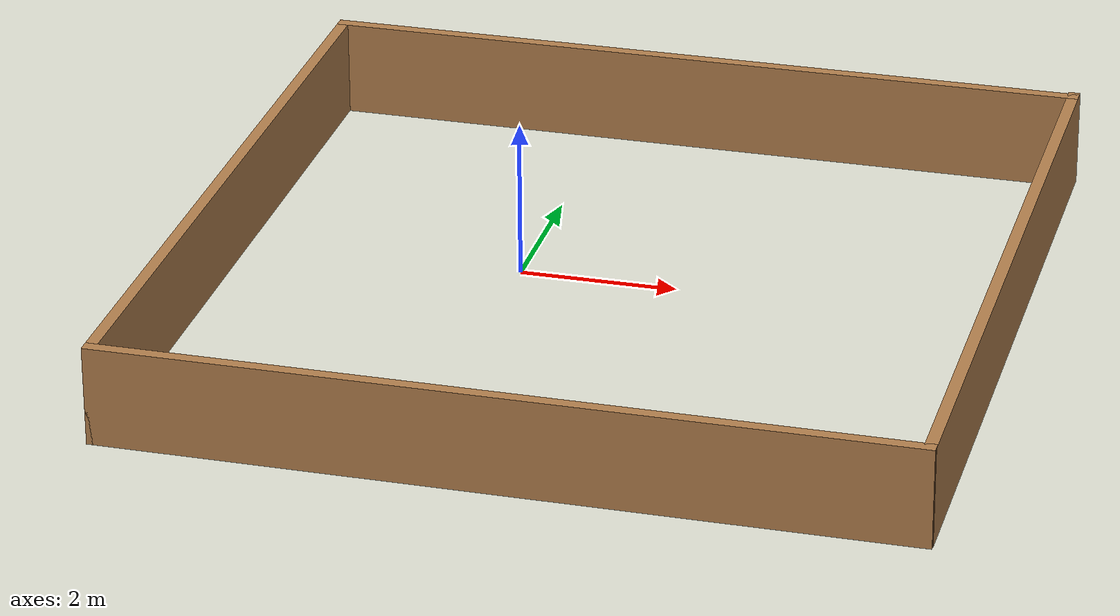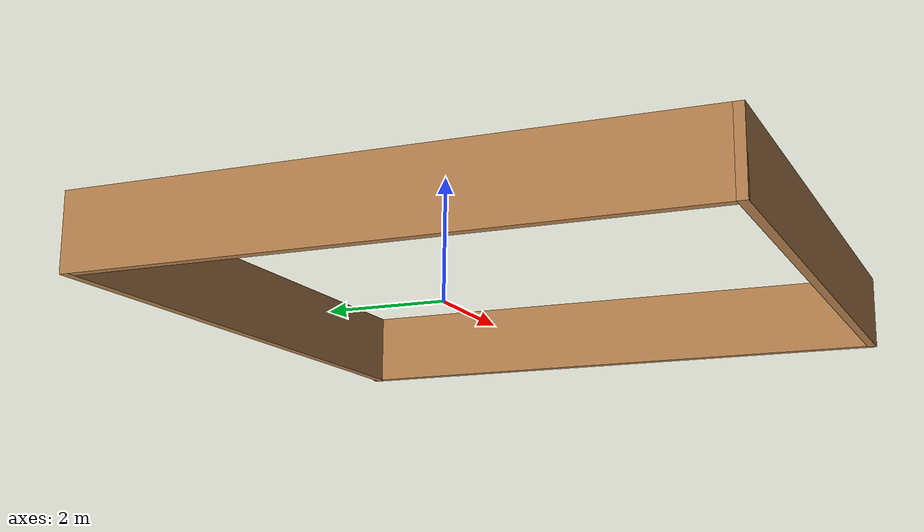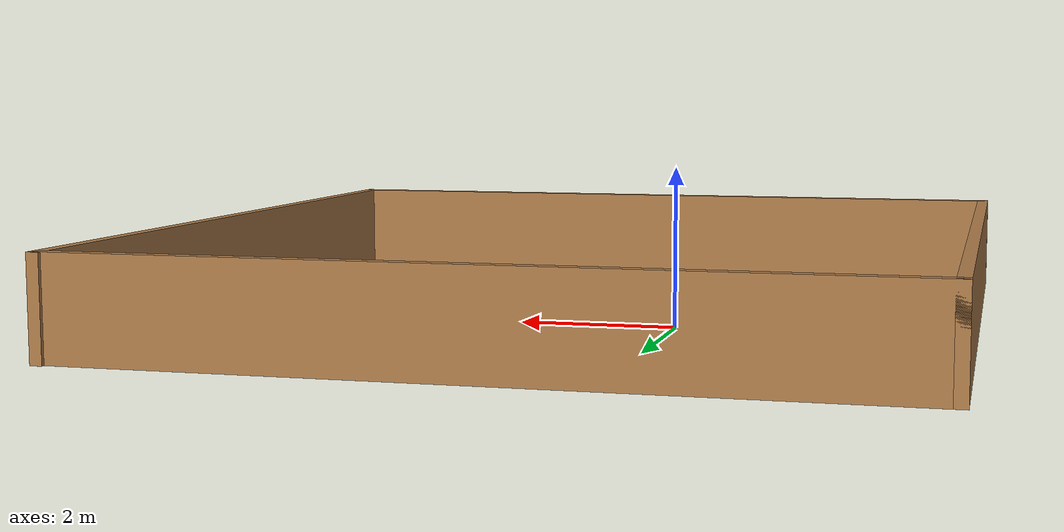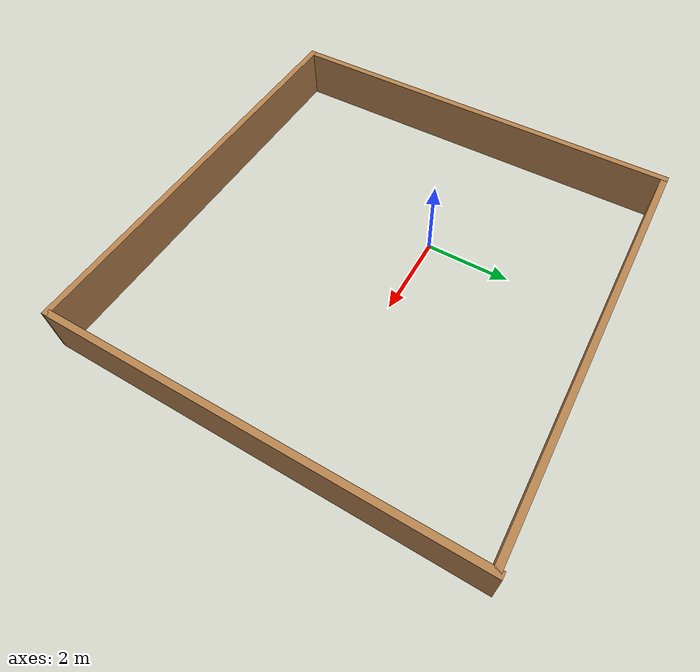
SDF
<?xml version='1.0'?>
<sdf version='1.6'>
  <model name='box_empty2'>
    <pose frame=''>1.3045 -0.621 0 0 -0 0</pose>
    <link name='Wall_12'>
      <collision name='Wall_12_Collision'>
        <geometry>
          <box>
            <size>10 0.15 1.25</size>
          </box>
        </geometry>
        <pose frame=''>0 0 0.625 0 -0 0</pose>
      </collision>
      <visual name='Wall_12_Visual'>
        <pose frame=''>0 0 0.625 0 -0 0</pose>
        <geometry>
          <box>
            <size>10 0.15 1.25</size>
          </box>
        </geometry>
        <material>
          <script>
            <uri>file://media/materials/scripts/gazebo.material</uri>
            <name>Gazebo/Wood</name>
          </script>
          <ambient>1 1 1 1</ambient>
        </material>
        <meta>
          <layer>0</layer>
        </meta>
      </visual>
      <pose frame=''>-4.9275 -0.023 0 0 -0 1.5708</pose>
    </link>
    <link name='Wall_14'>
      <collision name='Wall_14_Collision'>
        <geometry>
          <box>
            <size>10 0.15 1.25</size>
          </box>
        </geometry>
        <pose frame=''>0 0 0.625 0 -0 0</pose>
      </collision>
      <visual name='Wall_14_Visual'>
        <pose frame=''>0 0 0.625 0 -0 0</pose>
        <geometry>
          <box>
            <size>10 0.15 1.25</size>
          </box>
        </geometry>
        <material>
          <script>
            <uri>file://media/materials/scripts/gazebo.material</uri>
            <name>Gazebo/Wood</name>
          </script>
          <ambient>1 1 1 1</ambient>
        </material>
        <meta>
          <layer>0</layer>
        </meta>
      </visual>
      <pose frame=''>-0.0025 -4.948 0 0 -0 0</pose>
    </link>
    <link name='Wall_20'>
      <collision name='Wall_20_Collision'>
        <geometry>
          <box>
            <size>10 0.15 1.25</size>
          </box>
        </geometry>
        <pose frame=''>0 0 0.625 0 -0 0</pose>
      </collision>
      <visual name='Wall_20_Visual'>
        <pose frame=''>0 0 0.625 0 -0 0</pose>
        <geometry>
          <box>
            <size>10 0.15 1.25</size>
          </box>
        </geometry>
        <material>
          <script>
            <uri>file://media/materials/scripts/gazebo.material</uri>
            <name>Gazebo/Wood</name>
          </script>
          <ambient>1 1 1 1</ambient>
        </material>
        <meta>
          <layer>0</layer>
        </meta>
      </visual>
      <pose frame=''>-0.0025 4.902 0 0 -0 0</pose>
    </link>
    <link name='Wall_8'>
      <collision name='Wall_8_Collision'>
        <geometry>
          <box>
            <size>10 0.15 1.25</size>
          </box>
        </geometry>
        <pose frame=''>0 0 0.625 0 -0 0</pose>
      </collision>
      <visual name='Wall_8_Visual'>
        <pose frame=''>0 0 0.625 0 -0 0</pose>
        <geometry>
          <box>
            <size>10 0.15 1.25</size>
          </box>
        </geometry>
        <material>
          <script>
            <uri>file://media/materials/scripts/gazebo.material</uri>
            <name>Gazebo/Wood</name>
          </script>
          <ambient>1 1 1 1</ambient>
        </material>
        <meta>
          <layer>0</layer>
        </meta>
      </visual>
      <pose frame=''>4.9275 0.023 0 0 -0 -1.5708</pose>
    </link>
    <static>1</static>
  </model>
</sdf>
